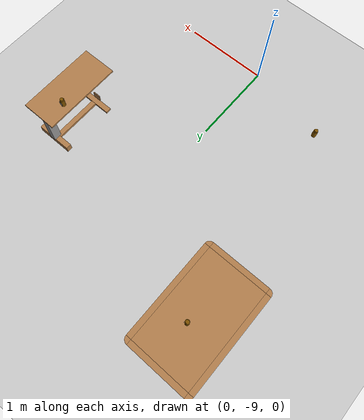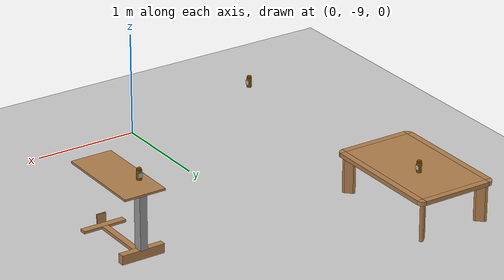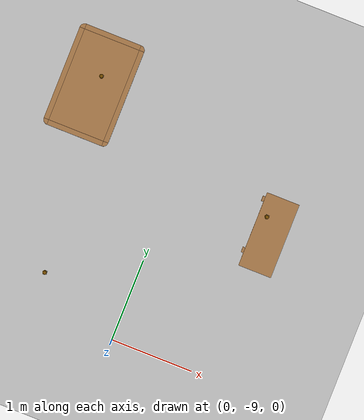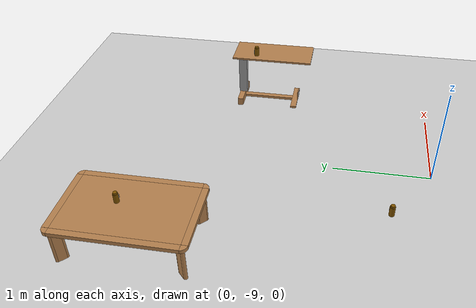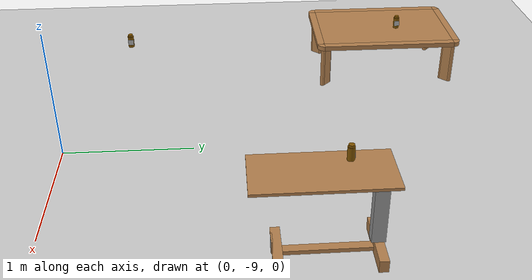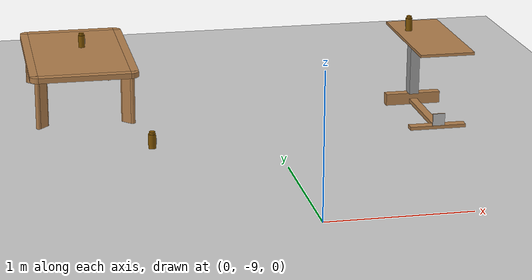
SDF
<sdf version="1.6">
 <world name="default">
  <model name="ground_plane">
   <static>1</static>
   <link name="link">
    <collision name="collision">
     <geometry><plane><normal>0 0 1</normal><size>100 100</size></plane></geometry>
     <surface><friction><ode><mu>100</mu><mu2>50</mu2></ode></friction></surface>
    </collision>
    <visual name="visual">
     <cast_shadows>0</cast_shadows>
     <geometry><plane><normal>0 0 1</normal><size>100 100</size></plane></geometry>
     <material>
      <script><uri>file://media/materials/scripts/gazebo.material</uri><name>Gazebo/Grey</name></script>
     </material>
    </visual>
   </link>
  </model>
  <model name="bottle">
   <link name="link">
    <inertial>
     <mass>0.05</mass>
     <inertia><ixx>0.00058</ixx><ixy>0</ixy><ixz>0</ixz><iyy>0.00058</iyy><iyz>0</iyz><izz>0.00016</izz></inertia>
    </inertial>
    <visual name="top">
     <pose>0 0 0.0555 0 -0 0</pose>
     <geometry><cylinder><radius>0.019</radius><length>0.016</length></cylinder></geometry>
     <material>
      <ambient>1 0.647 0 1</ambient>
      <diffuse>0.5 0.3235 0 1</diffuse>
      <specular>0.1 0.1 0.1 1</specular>
      <emissive>0 0 0 0</emissive>
     </material>
    </visual>
    <collision name="collision_top">
     <pose>0 0 0.0555 0 -0 0</pose>
     <geometry><cylinder><radius>0.019</radius><length>0.016</length></cylinder></geometry>
     <surface>
      <bounce><restitution_coefficient>0.2</restitution_coefficient><threshold>0</threshold></bounce>
      <contact><ode><kp>10000</kp><max_vel>10</max_vel></ode></contact>
     </surface>
    </collision>
    <visual name="bottom">
     <geometry><cylinder><radius>0.0245</radius><length>0.095</length></cylinder></geometry>
     <material>
      <ambient>1 0.7 0.3 1</ambient>
      <diffuse>0.5 0.3235 0 1</diffuse>
      <specular>0.1 0.1 0.1 1</specular>
      <emissive>0 0 0 0</emissive>
     </material>
    </visual>
    <collision name="collision_bottom">
     <geometry><cylinder><radius>0.0245</radius><length>0.095</length></cylinder></geometry>
     <surface>
      <bounce><restitution_coefficient>0.2</restitution_coefficient><threshold>0</threshold></bounce>
      <contact><ode><kp>100000</kp><max_vel>10</max_vel></ode></contact>
     </surface>
    </collision>
    <velocity_decay><linear>0</linear><angular>0</angular></velocity_decay>
    <visual name="marker_4000">
     <pose>0.0245 0 0 0 1.57 3.141</pose>
     <geometry><box><size>0.045 0.045 0.0001</size></box></geometry>
     <material>
      <script>
       <uri>model://marker/4000/scripts</uri>
       <uri>model://marker/4000/textures</uri>
       <name>Marker/4000</name>
      </script>
     </material>
    </visual>
   </link>
   <static>0</static>
   <pose>1.13095 -6.99592 0.6825 3e-06 -1e-05 1.48442</pose>
  </model>
  <model name="bed_table">
   <link name="link">
    <inertial>
     <pose>0 0.449 0.001 0 -0 0</pose>
     <mass>10</mass>
     <inertia><ixx>1</ixx><ixy>0</ixy><ixz>0</ixz><iyy>1</iyy><iyz>0</iyz><izz>1</izz></inertia>
    </inertial>
    <visual name="top_board">
     <pose>0 0.449 0.625 0 -0 0</pose>
     <geometry><box><size>0.398 0.898 0.02</size></box></geometry>
     <material>
      <script><uri>model://base_materials/wood/scripts/wood.material</uri><name>base_materials/wood</name></script>
     </material>
    </visual>
    <collision name="collision_top_board">
     <pose>0 0.449 0.625 0 -0 0</pose>
     <geometry><box><size>0.398 0.898 0.02</size></box></geometry>
    </collision>
    <visual name="right_pole">
     <pose>0 0.817 0.3515 0 -0 0</pose>
     <geometry><box><size>0.072 0.094 0.527</size></box></geometry>
     <material>
      <script><uri>model://base_materials/color/scripts</uri><name>hsr_color/grey</name></script>
     </material>
    </visual>
    <collision name="collision_right_pole">
     <pose>0 0.817 0.3515 0 -0 0</pose>
     <geometry><box><size>0.072 0.094 0.527</size></box></geometry>
    </collision>
    <visual name="right_bottom_pole">
     <pose>0 0.8225 0.044 0 -0 0</pose>
     <geometry><box><size>0.42 0.063 0.088</size></box></geometry>
     <material>
      <script><uri>model://base_materials/wood/scripts/wood.material</uri><name>base_materials/wood</name></script>
     </material>
    </visual>
    <collision name="collision_right_bottom_pole">
     <pose>0 0.8225 0.044 0 -0 0</pose>
     <geometry><box><size>0.42 0.063 0.088</size></box></geometry>
    </collision>
    <visual name="bottom_center_pole">
     <pose>0 0.502 0.03 0 -0 0</pose>
     <geometry><box><size>0.06 0.578 0.03</size></box></geometry>
     <material>
      <script><uri>model://base_materials/wood/scripts/wood.material</uri><name>base_materials/wood</name></script>
     </material>
    </visual>
    <collision name="collision_bottom_center_pole">
     <pose>0 0.502 0.03 0 -0 0</pose>
     <geometry><box><size>0.06 0.578 0.03</size></box></geometry>
    </collision>
    <visual name="left_bottom_pole">
     <pose>0 0.18 0.0325 0 -0 0</pose>
     <geometry><box><size>0.418 0.066 0.025</size></box></geometry>
     <material>
      <script><uri>model://base_materials/wood/scripts/wood.material</uri><name>base_materials/wood</name></script>
     </material>
    </visual>
    <collision name="collision_left_bottom_pole">
     <pose>0 0.18 0.0325 0 -0 0</pose>
     <geometry><box><size>0.418 0.066 0.025</size></box></geometry>
    </collision>
    <visual name="marker_0010">
     <pose>0 0.14 0.093 0 -0 0</pose>
     <geometry><box><size>0.09 0.001 0.09</size></box></geometry>
     <material>
      <script>
       <uri>model://bed_table/marker/0010/scripts</uri>
       <uri>model://bed_table/marker/0010/textures</uri>
       <name>Marker/0010</name>
      </script>
     </material>
    </visual>
    <collision name="collision_marker_0010">
     <pose>0 0.14 0.093 0 -0 0</pose>
     <geometry><box><size>0.09 0.001 0.09</size></box></geometry>
    </collision>
    <visual name="marker_0010_back_plate">
     <pose>0 0.146 0.093 0 -0 0</pose>
     <geometry><box><size>0.09 0.01 0.09</size></box></geometry>
     <material>
      <script><uri>model://base_materials/wood/scripts/wood.material</uri><name>base_materials/wood</name></script>
     </material>
    </visual>
    <collision name="collision_marker_0010_back_plate">
     <pose>0 0.146 0.093 0 -0 0</pose>
     <geometry><box><size>0.09 0.01 0.09</size></box></geometry>
    </collision>
    <velocity_decay><linear>0</linear><angular>0</angular></velocity_decay>
   </link>
   <static>1</static>
   <pose>1.23263 -7.6297 0 0 -0 0</pose>
  </model>
  <model name="bottle_clone_2">
   <link name="link">
    <inertial>
     <mass>0.05</mass>
     <inertia><ixx>0.00058</ixx><ixy>0</ixy><ixz>0</ixz><iyy>0.00058</iyy><iyz>0</iyz><izz>0.00016</izz></inertia>
    </inertial>
    <visual name="top">
     <pose>0 0 0.0555 0 -0 0</pose>
     <geometry><cylinder><radius>0.019</radius><length>0.016</length></cylinder></geometry>
     <material>
      <ambient>1 0.647 0 1</ambient>
      <diffuse>0.5 0.3235 0 1</diffuse>
      <specular>0.1 0.1 0.1 1</specular>
      <emissive>0 0 0 0</emissive>
     </material>
    </visual>
    <collision name="collision_top">
     <pose>0 0 0.0555 0 -0 0</pose>
     <geometry><cylinder><radius>0.019</radius><length>0.016</length></cylinder></geometry>
     <surface>
      <bounce><restitution_coefficient>0.2</restitution_coefficient><threshold>0</threshold></bounce>
      <contact><ode><kp>10000</kp><max_vel>10</max_vel></ode></contact>
     </surface>
    </collision>
    <visual name="bottom">
     <geometry><cylinder><radius>0.0245</radius><length>0.095</length></cylinder></geometry>
     <material>
      <ambient>1 0.7 0.3 1</ambient>
      <diffuse>0.5 0.3235 0 1</diffuse>
      <specular>0.1 0.1 0.1 1</specular>
      <emissive>0 0 0 0</emissive>
     </material>
    </visual>
    <collision name="collision_bottom">
     <geometry><cylinder><radius>0.0245</radius><length>0.095</length></cylinder></geometry>
     <surface>
      <bounce><restitution_coefficient>0.2</restitution_coefficient><threshold>0</threshold></bounce>
      <contact><ode><kp>100000</kp><max_vel>10</max_vel></ode></contact>
     </surface>
    </collision>
    <velocity_decay><linear>0</linear><angular>0</angular></velocity_decay>
    <visual name="marker_4000">
     <pose>0.0245 0 0 0 1.57 3.141</pose>
     <geometry><box><size>0.045 0.045 0.0001</size></box></geometry>
     <material>
      <script>
       <uri>model://marker/4000/scripts</uri>
       <uri>model://marker/4000/textures</uri>
       <name>Marker/4000</name>
      </script>
     </material>
    </visual>
   </link>
   <static>0</static>
   <pose>-1.00971 -8.53332 0.4475 9e-06 -7e-06 0.03372</pose>
  </model>
  <model name="kitchen_lowtable_clone_5">
   <link name="link">
    <inertial>
     <mass>10</mass>
     <inertia><ixx>1</ixx><ixy>0</ixy><ixz>0</ixz><iyy>1</iyy><iyz>0</iyz><izz>1</izz></inertia>
    </inertial>
    <visual name="center_board">
     <pose>0 0 0.38 0 -0 0</pose>
     <geometry><box><size>0.68 1.13 0.04</size></box></geometry>
     <material>
      <script><uri>model://base_materials/wood/scripts/wood.material</uri><name>base_materials/wood</name></script>
     </material>
    </visual>
    <collision name="collision_center_board">
     <pose>0 0 0.38 0 -0 0</pose>
     <geometry><box><size>0.68 1.13 0.04</size></box></geometry>
    </collision>
    <visual name="front_board">
     <pose>0.37 0 0.38 0 -0 0</pose>
     <geometry><box><size>0.06 1.13 0.04</size></box></geometry>
     <material>
      <script><uri>model://base_materials/wood/scripts/wood.material</uri><name>base_materials/wood</name></script>
     </material>
    </visual>
    <collision name="collision_front_board">
     <pose>0.37 0 0.38 0 -0 0</pose>
     <geometry><box><size>0.06 1.13 0.04</size></box></geometry>
    </collision>
    <visual name="back_board">
     <pose>-0.37 0 0.38 0 -0 0</pose>
     <geometry><box><size>0.06 1.13 0.04</size></box></geometry>
     <material>
      <script><uri>model://base_materials/wood/scripts/wood.material</uri><name>base_materials/wood</name></script>
     </material>
    </visual>
    <collision name="collision_back_board">
     <pose>-0.37 0 0.38 0 -0 0</pose>
     <geometry><box><size>0.06 1.13 0.04</size></box></geometry>
    </collision>
    <visual name="right_board">
     <pose>0 0.595 0.38 0 -0 0</pose>
     <geometry><box><size>0.68 0.06 0.04</size></box></geometry>
     <material>
      <script><uri>model://base_materials/wood/scripts/wood.material</uri><name>base_materials/wood</name></script>
     </material>
    </visual>
    <collision name="collision_right_board">
     <pose>0 0.595 0.38 0 -0 0</pose>
     <geometry><box><size>0.68 0.06 0.04</size></box></geometry>
    </collision>
    <visual name="left_board">
     <pose>0 -0.595 0.38 0 -0 0</pose>
     <geometry><box><size>0.68 0.06 0.04</size></box></geometry>
     <material>
      <script><uri>model://base_materials/wood/scripts/wood.material</uri><name>base_materials/wood</name></script>
     </material>
    </visual>
    <collision name="collision_left_board">
     <pose>0 -0.595 0.38 0 -0 0</pose>
     <geometry><box><size>0.68 0.06 0.04</size></box></geometry>
    </collision>
    <visual name="front_right_corner_board">
     <pose>0.34 0.565 0.38 0 -0 0</pose>
     <geometry><cylinder><radius>0.06</radius><length>0.039</length></cylinder></geometry>
     <material>
      <script><uri>model://base_materials/wood/scripts/wood.material</uri><name>base_materials/wood</name></script>
     </material>
    </visual>
    <collision name="collision_front_right_corner_board">
     <pose>0.34 0.565 0.38 0 -0 0</pose>
     <geometry><cylinder><radius>0.06</radius><length>0.039</length></cylinder></geometry>
    </collision>
    <visual name="front_left_corner_board">
     <pose>0.34 -0.565 0.38 0 -0 0</pose>
     <geometry><cylinder><radius>0.06</radius><length>0.039</length></cylinder></geometry>
     <material>
      <script><uri>model://base_materials/wood/scripts/wood.material</uri><name>base_materials/wood</name></script>
     </material>
    </visual>
    <collision name="collision_front_left_corner_board">
     <pose>0.34 -0.565 0.38 0 -0 0</pose>
     <geometry><cylinder><radius>0.06</radius><length>0.039</length></cylinder></geometry>
    </collision>
    <visual name="front_back_right_corner_board">
     <pose>-0.34 0.565 0.38 0 -0 0</pose>
     <geometry><cylinder><radius>0.06</radius><length>0.039</length></cylinder></geometry>
     <material>
      <script><uri>model://base_materials/wood/scripts/wood.material</uri><name>base_materials/wood</name></script>
     </material>
    </visual>
    <collision name="collision_back_right_corner_board">
     <pose>-0.34 0.565 0.38 0 -0 0</pose>
     <geometry><cylinder><radius>0.06</radius><length>0.039</length></cylinder></geometry>
    </collision>
    <visual name="front_back_left_corner_board">
     <pose>-0.34 -0.565 0.38 0 -0 0</pose>
     <geometry><cylinder><radius>0.06</radius><length>0.039</length></cylinder></geometry>
     <material>
      <script><uri>model://base_materials/wood/scripts/wood.material</uri><name>base_materials/wood</name></script>
     </material>
    </visual>
    <collision name="collision_back_left_corner_board">
     <pose>-0.34 -0.565 0.38 0 -0 0</pose>
     <geometry><cylinder><radius>0.06</radius><length>0.039</length></cylinder></geometry>
    </collision>
    <visual name="front_left_corner_frame1">
     <pose>0.345858 -0.57086 0.18 0 -0 0</pose>
     <geometry><cylinder><radius>0.02</radius><length>0.36</length></cylinder></geometry>
     <material>
      <script><uri>model://base_materials/wood/scripts/wood.material</uri><name>base_materials/wood</name></script>
     </material>
    </visual>
    <collision name="collision_front_left_corner_frame1">
     <pose>0.345858 -0.57086 0.18 0 -0 0</pose>
     <geometry><cylinder><radius>0.02</radius><length>0.36</length></cylinder></geometry>
    </collision>
    <visual name="front_left_corner_frame2">
     <pose>0.317574 -0.54257 0.18 0 -0 0.7854</pose>
     <geometry><box><size>0.04 0.08 0.36</size></box></geometry>
     <material>
      <script><uri>model://base_materials/wood/scripts/wood.material</uri><name>base_materials/wood</name></script>
     </material>
    </visual>
    <collision name="collision_front_left_corner_frame2">
     <pose>0.317574 -0.54257 0.18 0 -0 0.7854</pose>
     <geometry><box><size>0.04 0.08 0.36</size></box></geometry>
    </collision>
    <visual name="front_left_corner_frame3">
     <pose>0.289289 -0.51429 0.18 0 -0 0</pose>
     <geometry><cylinder><radius>0.02</radius><length>0.36</length></cylinder></geometry>
     <material>
      <script><uri>model://base_materials/wood/scripts/wood.material</uri><name>base_materials/wood</name></script>
     </material>
    </visual>
    <collision name="collision_front_left_corner_frame3">
     <pose>0.289289 -0.51429 0.18 0 -0 0</pose>
     <geometry><cylinder><radius>0.02</radius><length>0.36</length></cylinder></geometry>
    </collision>
    <visual name="front_right_corner_frame1">
     <pose>0.345858 0.57086 0.18 0 -0 0</pose>
     <geometry><cylinder><radius>0.02</radius><length>0.36</length></cylinder></geometry>
     <material>
      <script><uri>model://base_materials/wood/scripts/wood.material</uri><name>base_materials/wood</name></script>
     </material>
    </visual>
    <collision name="collision_front_right_corner_frame1">
     <pose>0.345858 0.57086 0.18 0 -0 0</pose>
     <geometry><cylinder><radius>0.02</radius><length>0.36</length></cylinder></geometry>
    </collision>
    <visual name="front_right_corner_frame2">
     <pose>0.317574 0.54257 0.18 0 0 -0.7854</pose>
     <geometry><box><size>0.04 0.08 0.36</size></box></geometry>
     <material>
      <script><uri>model://base_materials/wood/scripts/wood.material</uri><name>base_materials/wood</name></script>
     </material>
    </visual>
    <collision name="collision_front_right_corner_frame2">
     <pose>0.317574 0.54257 0.18 0 0 -0.7854</pose>
     <geometry><box><size>0.04 0.08 0.36</size></box></geometry>
    </collision>
    <visual name="front_right_corner_frame3">
     <pose>0.289289 0.51429 0.18 0 -0 0</pose>
     <geometry><cylinder><radius>0.02</radius><length>0.36</length></cylinder></geometry>
     <material>
      <script><uri>model://base_materials/wood/scripts/wood.material</uri><name>base_materials/wood</name></script>
     </material>
    </visual>
    <collision name="collision_front_right_corner_frame3">
     <pose>0.289289 0.51429 0.18 0 -0 0</pose>
     <geometry><cylinder><radius>0.02</radius><length>0.36</length></cylinder></geometry>
    </collision>
    <visual name="back_left_corner_frame1">
     <pose>-0.345858 -0.57086 0.18 0 -0 0</pose>
     <geometry><cylinder><radius>0.02</radius><length>0.36</length></cylinder></geometry>
     <material>
      <script><uri>model://base_materials/wood/scripts/wood.material</uri><name>base_materials/wood</name></script>
     </material>
    </visual>
    <collision name="collision_back_left_corner_frame1">
     <pose>-0.345858 -0.57086 0.18 0 -0 0</pose>
     <geometry><cylinder><radius>0.02</radius><length>0.36</length></cylinder></geometry>
    </collision>
    <visual name="back_left_corner_frame2">
     <pose>-0.317574 -0.54257 0.18 0 0 -0.7854</pose>
     <geometry><box><size>0.04 0.08 0.36</size></box></geometry>
     <material>
      <script><uri>model://base_materials/wood/scripts/wood.material</uri><name>base_materials/wood</name></script>
     </material>
    </visual>
    <collision name="collision_back_left_corner_frame2">
     <pose>-0.317574 -0.54257 0.18 0 0 -0.7854</pose>
     <geometry><box><size>0.04 0.08 0.36</size></box></geometry>
    </collision>
    <visual name="back_left_corner_frame3">
     <pose>-0.289289 -0.51429 0.18 0 -0 0</pose>
     <geometry><cylinder><radius>0.02</radius><length>0.36</length></cylinder></geometry>
     <material>
      <script><uri>model://base_materials/wood/scripts/wood.material</uri><name>base_materials/wood</name></script>
     </material>
    </visual>
    <collision name="collision_back_left_corner_frame3">
     <pose>-0.289289 -0.51429 0.18 0 -0 0</pose>
     <geometry><cylinder><radius>0.02</radius><length>0.36</length></cylinder></geometry>
    </collision>
    <visual name="back_right_corner_frame1">
     <pose>-0.345858 0.57086 0.18 0 -0 0</pose>
     <geometry><cylinder><radius>0.02</radius><length>0.36</length></cylinder></geometry>
     <material>
      <script><uri>model://base_materials/wood/scripts/wood.material</uri><name>base_materials/wood</name></script>
     </material>
    </visual>
    <collision name="collision_back_right_corner_frame1">
     <pose>-0.345858 0.57086 0.18 0 -0 0</pose>
     <geometry><cylinder><radius>0.02</radius><length>0.36</length></cylinder></geometry>
    </collision>
    <visual name="back_right_corner_frame2">
     <pose>-0.317574 0.54257 0.18 0 -0 0.7854</pose>
     <geometry><box><size>0.04 0.08 0.36</size></box></geometry>
     <material>
      <script><uri>model://base_materials/wood/scripts/wood.material</uri><name>base_materials/wood</name></script>
     </material>
    </visual>
    <collision name="collision_back_right_corner_frame2">
     <pose>-0.317574 0.54257 0.18 0 -0 0.7854</pose>
     <geometry><box><size>0.04 0.08 0.36</size></box></geometry>
    </collision>
    <visual name="back_right_corner_frame3">
     <pose>-0.289289 0.51429 0.18 0 -0 0</pose>
     <geometry><cylinder><radius>0.02</radius><length>0.36</length></cylinder></geometry>
     <material>
      <script><uri>model://base_materials/wood/scripts/wood.material</uri><name>base_materials/wood</name></script>
     </material>
    </visual>
    <collision name="collision_back_right_corner_frame3">
     <pose>-0.289289 0.51429 0.18 0 -0 0</pose>
     <geometry><cylinder><radius>0.02</radius><length>0.36</length></cylinder></geometry>
    </collision>
    <velocity_decay><linear>0</linear><angular>0</angular></velocity_decay>
   </link>
   <static>1</static>
   <pose>-1.27948 -6.30853 0 0 -0 0</pose>
  </model>
  <model name="bottle_clone_2_clone">
   <link name="link">
    <inertial>
     <mass>0.05</mass>
     <inertia><ixx>0.00058</ixx><ixy>0</ixy><ixz>0</ixz><iyy>0.00058</iyy><iyz>0</iyz><izz>0.00016</izz></inertia>
    </inertial>
    <visual name="top">
     <pose>0 0 0.0555 0 -0 0</pose>
     <geometry><cylinder><radius>0.019</radius><length>0.016</length></cylinder></geometry>
     <material>
      <ambient>1 0.647 0 1</ambient>
      <diffuse>0.5 0.3235 0 1</diffuse>
      <specular>0.1 0.1 0.1 1</specular>
      <emissive>0 0 0 0</emissive>
     </material>
    </visual>
    <collision name="collision_top">
     <pose>0 0 0.0555 0 -0 0</pose>
     <geometry><cylinder><radius>0.019</radius><length>0.016</length></cylinder></geometry>
     <surface>
      <bounce><restitution_coefficient>0.2</restitution_coefficient><threshold>0</threshold></bounce>
      <contact><ode><kp>10000</kp><max_vel>10</max_vel></ode></contact>
     </surface>
    </collision>
    <visual name="bottom">
     <geometry><cylinder><radius>0.0245</radius><length>0.095</length></cylinder></geometry>
     <material>
      <ambient>1 0.7 0.3 1</ambient>
      <diffuse>0.5 0.3235 0 1</diffuse>
      <specular>0.1 0.1 0.1 1</specular>
      <emissive>0 0 0 0</emissive>
     </material>
    </visual>
    <collision name="collision_bottom">
     <geometry><cylinder><radius>0.0245</radius><length>0.095</length></cylinder></geometry>
     <surface>
      <bounce><restitution_coefficient>0.2</restitution_coefficient><threshold>0</threshold></bounce>
      <contact><ode><kp>100000</kp><max_vel>10</max_vel></ode></contact>
     </surface>
    </collision>
    <velocity_decay><linear>0</linear><angular>0</angular></velocity_decay>
    <visual name="marker_4000">
     <pose>0.0245 0 0 0 1.57 3.141</pose>
     <geometry><box><size>0.045 0.045 0.0001</size></box></geometry>
     <material>
      <script>
       <uri>model://marker/4000/scripts</uri>
       <uri>model://marker/4000/textures</uri>
       <name>Marker/4000</name>
      </script>
     </material>
    </visual>
   </link>
   <static>0</static>
   <pose>-1.23284 -6.18521 0.4475 6e-06 -8e-06 0.03372</pose>
  </model>
 </world>
</sdf>
